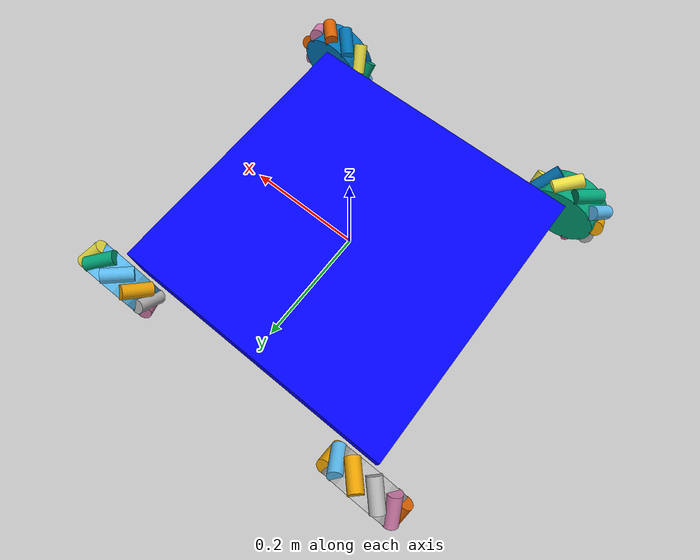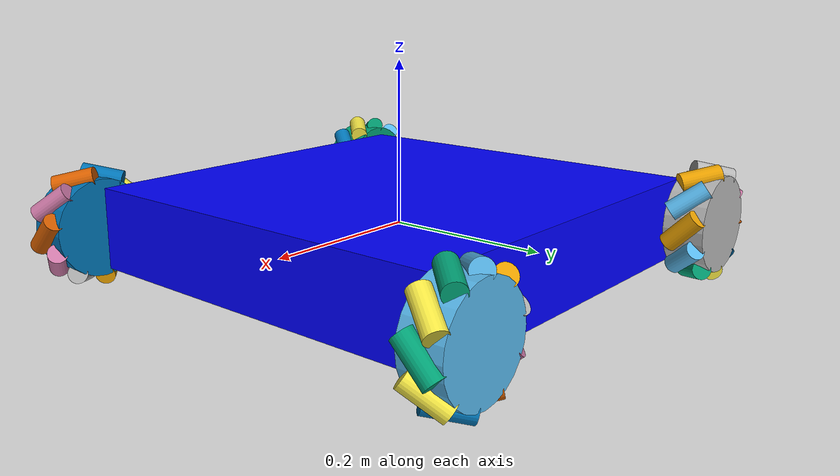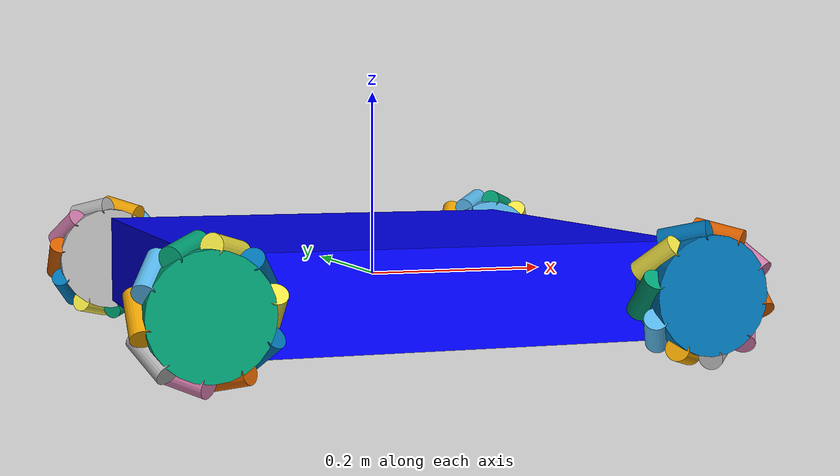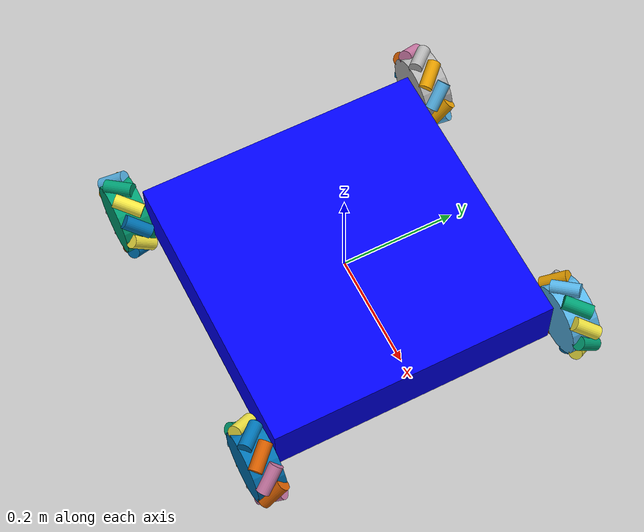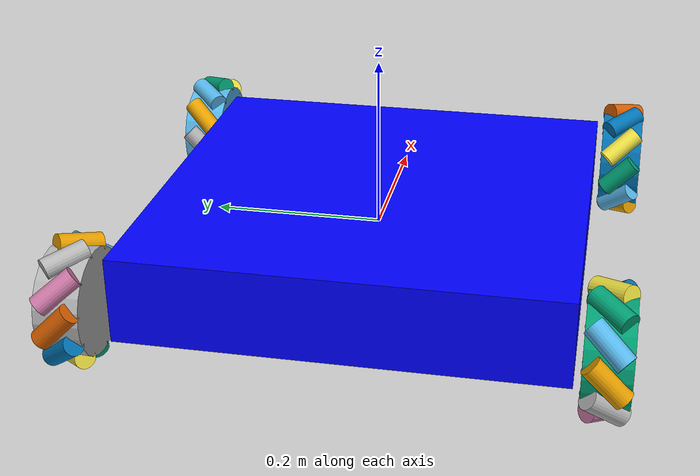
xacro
<?xml version="1.0"?>
<robot xmlns:xacro="http://ros.org/wiki/xacro" name="routewise">

    <!-- Include Material and Core Files -->
    <xacro:include filename="$(find rw_description)/urdf/mecanum_wheel.xacro"/>
    <xacro:include filename="$(find rw_description)/urdf/routewise_material.xacro"/>
    <xacro:include filename="$(find rw_description)/urdf/routewise_core.xacro"/>

    <!-- Additional robot components, sensors, etc., can be added here -->

</robot>

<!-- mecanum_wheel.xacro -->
<robot xmlns:xacro="http://ros.org/wiki/xacro">

  <!-- Properties -->
  <xacro:property name="wheel_mass" value="2.0"/>
  <xacro:property name="roller_mass" value="0.1"/>
  <xacro:property name="wheel_radius" value="0.06"/>
  <xacro:property name="wheel_width" value="0.05"/>
  <xacro:property name="roller_radius" value="0.012"/>
  <xacro:property name="roller_length" value="${wheel_width}"/>

  <!-- Mecanum Wheel Macro -->
  <xacro:macro name="mecanum_wheel" params="name roller_angle">

    <!-- Derived Properties -->
    <xacro:property name="I_wheel_xx_yy" value="0.0250833333333333"/>
    <xacro:property name="I_wheel_zz" value="0.0100000000000000"/>
    <xacro:property name="I_roller_xx_yy" value="0.0008750000000000"/>
    <xacro:property name="I_roller_zz" value="0.0002000000000000"/>

    <!-- Main Wheel Body -->
    <link name="${name}">
      <visual>
        <geometry>
          <cylinder radius="${wheel_radius}" length="${wheel_width}"/>
        </geometry>
      </visual>
      <collision>
        <geometry>
          <cylinder radius="${wheel_radius}" length="${wheel_width}"/>
        </geometry>
      </collision>
      <inertial>
        <mass value="${wheel_mass}"/>
        <inertia ixx="${I_wheel_xx_yy}" ixy="0" ixz="0" iyy="${I_wheel_xx_yy}" iyz="0" izz="${I_wheel_zz}"/>
      </inertial>
    </link>

  <!-- Roller Macro -->
  <xacro:macro name="roller" params="name parent angle">
    <link name="${name}">
      <visual>
        <geometry>
          <cylinder radius="${roller_radius}" length="${roller_length}"/>
        </geometry>
      </visual>
      <collision>
        <geometry>
          <cylinder radius="${roller_radius}" length="${roller_length}"/>
        </geometry>
      </collision>
      <inertial>
        <mass value="${roller_mass}"/>
        <inertia ixx="${I_roller_xx_yy}" ixy="0" ixz="0" iyy="${I_roller_xx_yy}" iyz="0" izz="${I_roller_zz}"/>
      </inertial>
    </link>

    <joint name="${name}_joint" type="continuous">
      <parent link="${parent}"/>
      <child link="${name}"/>
      <origin
          xyz="${wheel_radius*cos(angle)} ${wheel_radius*sin(angle)} 0"
          rpy="${roller_angle} 0 ${angle}"/>
      <axis xyz="0 0 1"/>
   </joint>

  </xacro:macro>

    <!-- Rollers -->
    <xacro:roller name="${name}_roller_1" parent="${name}" angle="0"/>
    <xacro:roller name="${name}_roller_2" parent="${name}" angle="${1*2*pi/10}"/>
    <xacro:roller name="${name}_roller_3" parent="${name}" angle="${2*2*pi/10}"/>
    <xacro:roller name="${name}_roller_4" parent="${name}" angle="${3*2*pi/10}"/>
    <xacro:roller name="${name}_roller_5" parent="${name}" angle="${4*2*pi/10}"/>
    <xacro:roller name="${name}_roller_6" parent="${name}" angle="${5*2*pi/10}"/>
    <xacro:roller name="${name}_roller_7" parent="${name}" angle="${6*2*pi/10}"/>
    <xacro:roller name="${name}_roller_8" parent="${name}" angle="${7*2*pi/10}"/>
    <xacro:roller name="${name}_roller_9" parent="${name}" angle="${8*2*pi/10}"/>
    <xacro:roller name="${name}_roller_10" parent="${name}" angle="${9*2*pi/10}"/>

  </xacro:macro>

</robot>

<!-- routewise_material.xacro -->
<robot xmlns:xacro="http://ros.org/wiki/xacro">
    <!-- Material Definitions -->
    <material name="blue">
        <color rgba="0 0 1 1"/>
    </material>
    <material name="grey">
        <color rgba="0.5 0.5 0.5 1"/>
    </material>
</robot>

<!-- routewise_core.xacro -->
<robot xmlns:xacro="http://ros.org/wiki/xacro">

    <!-- Parameters -->
    <xacro:property name="base_length" value="0.5"/>
    <xacro:property name="base_width" value="0.5"/>
    <xacro:property name="base_height" value="0.1"/>
    <xacro:property name="width_offset_tolerance" value="0.008"/>

    <!-- Derived Parameters -->
    <xacro:property name="joint_offset_width" value="${base_width/2 + wheel_width/2 + width_offset_tolerance}"/>
    <xacro:property name="joint_offset_length" value="${base_length/2}"/>

    <!-- Inertial Macros -->
    <xacro:macro name="inertial_box" params="mass x y z">
        <inertial>
            <mass value="${mass}"/>
            <inertia ixx="${mass/12.0*(y*y + z*z)}" ixy="0.0" ixz="0.0"
                     iyy="${mass/12.0*(x*x + z*z)}" iyz="0.0"
                     izz="${mass/12.0*(x*x + y*y)}"/>
        </inertial>
    </xacro:macro>

    <xacro:macro name="inertial_cylinder" params="mass r h">
        <inertial>
            <mass value="${mass}"/>
            <inertia ixx="${(1/4.0)*mass*r*r + (1/12.0)*mass*h*h}" ixy="0.0" ixz="0.0"
                     iyy="${(1/4.0)*mass*r*r + (1/12.0)*mass*h*h}" iyz="0.0"
                     izz="${(1/2.0)*mass*r*r}"/>
        </inertial>
    </xacro:macro>

    <!-- Base Link -->
    <link name="base_link">
        <visual>
            <geometry>
                <box size="${base_length} ${base_width} ${base_height}"/>
            </geometry>
            <material name="blue"/>
        </visual>
        <collision>
            <geometry>
                <box size="${base_length} ${base_width} ${base_height}"/>
            </geometry>
        </collision>
        <xacro:inertial_box mass="10.0" x="${base_length}" y="${base_width}" z="${base_height}"/>
    </link>

    <!-- Wheel Joint Macro -->
    <xacro:macro name="wheel_joint" params="name parent child xyz">
        <joint name="${name}" type="continuous">
            <parent link="${parent}"/>
            <child link="${child}"/>
            <origin xyz="${xyz}" rpy="${3*pi/2} 0 0"/>
            <axis xyz="0 0 1"/>
        </joint>
    </xacro:macro>

    <!-- Wheel Links and Joints -->
    <xacro:mecanum_wheel name="front_left_wheel" roller_angle = "-0.785398"/> <!--Negative Inclination-->
    <xacro:mecanum_wheel name="front_right_wheel" roller_angle = "0.785398"/> <!--Positive Inclination-->    <!-- 45 degrees in radians -->
    <xacro:mecanum_wheel name="rear_left_wheel" roller_angle = "0.785398"/>
    <xacro:mecanum_wheel name="rear_right_wheel" roller_angle = "-0.785398"/>

    <xacro:wheel_joint name="front_left_wheel_joint" parent="base_link" child="front_left_wheel" xyz="${joint_offset_length} ${joint_offset_width} 0"/>
    <xacro:wheel_joint name="front_right_wheel_joint" parent="base_link" child="front_right_wheel" xyz="${joint_offset_length} -${joint_offset_width} 0"/>
    <xacro:wheel_joint name="rear_left_wheel_joint" parent="base_link" child="rear_left_wheel" xyz="-${joint_offset_length} ${joint_offset_width} 0"/>
    <xacro:wheel_joint name="rear_right_wheel_joint" parent="base_link" child="rear_right_wheel" xyz="-${joint_offset_length} -${joint_offset_width} 0"/>

    <!-- Gazebo plugin for mecanum drive -->
    <gazebo>
        <plugin filename="$(find rw_gz_plugins)/../lib/libmecanum_drive.so" name="mecanum_drive" >
            <robotWidth>${base_width}</robotWidth>
            <robotLength>${base_length}</robotLength>
        </plugin>
    </gazebo>

</robot>
